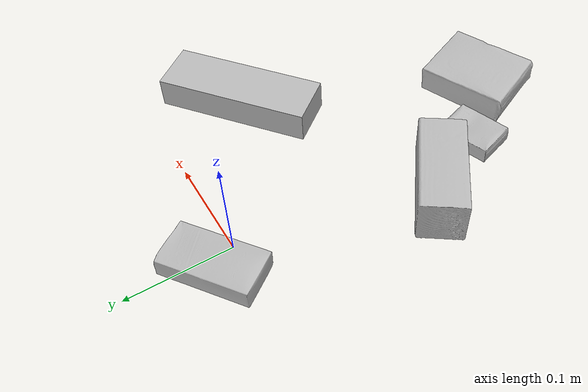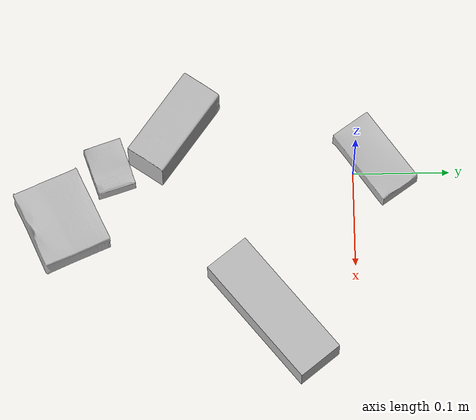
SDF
<sdf version="1.4">
  <world name="default">
    <light name="light1" type="point">
      <pose>0 0 1 0 0 0</pose>
      <diffuse>3 3 3 1</diffuse>
      <specular>3 3 3 1</specular>
    </light>
    <light name="light2" type="point">
      <pose>0 0.5 2 0 0 0</pose>
      <diffuse>1 1 1 1</diffuse>
      <specular>1 1 1 1</specular>
    </light>
    <light name="light3" type="point">
      <pose>0 0.5 2 0 0 0</pose>
      <diffuse>3 3 3 1</diffuse>
      <specular>3 3 3 1</specular>
    </light>
    <scene>
      <ambient>0.7 0.7 0.7</ambient>
    </scene>
    <model name="box1">
      <link name="link_box1">
        <collision name="default">
          <geometry>
            <mesh>
              <uri>model://sugar_box/collision_meshes/collision.obj</uri>
              <scale>0.5 0.5 0.5</scale>
            </mesh>
          </geometry>
          <surface>
            <friction>
              <ode>
                <mu>0.5</mu>
                <mu2>0.5</mu2>
              </ode>
            </friction>
          <contact>
        <ode>
            <max_vel>0</max_vel>
            <min_depth>0.0001</min_depth>
            <kp>1e8</kp>
        </ode>
    </contact></surface>
        </collision>
        <visual name="default">
          <geometry>
            <mesh>
              <uri>model://sugar_box/visual_meshes/visual.dae</uri>
              <scale>0.5 0.5 0.5</scale>
            </mesh>
          </geometry>
        </visual>
        <inertial>
          <mass>0.05016465485095978</mass>
          <pose>0.0005171863595023751 1.924554817378521e-05 -0.0001818240125430748 -0.00040462615463102695 0.0010506635220671036 0.0026153792546614123</pose>
          <inertia>
            <ixx>1.0449262e-05</ixx>
            <iyy>3.3774166e-05</iyy>
            <izz>4.0431696e-05</izz>
            <ixy>0</ixy>
            <ixz>0</ixz>
            <iyz>0</iyz>
          </inertia>
        </inertial>
      </link>
      <pose>-0.012782623060047626 0.022746462374925613 0.011399303562939167 0.0007756291864276162 -0.023432756793228645 -2.529188489731185</pose>
    </model>
    <model name="box2">
      <link name="link_box2">
        <collision name="default">
          <geometry>
            <mesh>
              <uri>model://cracker_box/collision_meshes/collision.obj</uri>
              <scale>0.25 0.25 0.25</scale>
            </mesh>
          </geometry>
          <surface>
            <friction>
              <ode>
                <mu>0.5</mu>
                <mu2>0.5</mu2>
              </ode>
            </friction>
          <contact>
        <ode>
            <max_vel>0</max_vel>
            <min_depth>0.0001</min_depth>
            <kp>1e8</kp>
        </ode>
    </contact></surface>
        </collision>
        <visual name="default">
          <geometry>
            <mesh>
              <uri>model://cracker_box/visual_meshes/visual.dae</uri>
              <scale>0.25 0.25 0.25</scale>
            </mesh>
          </geometry>
        </visual>
        <inertial>
          <mass>0.05325852707028389</mass>
          <pose>0.0002366033149883151 6.358561950037256e-05 -0.0004257383698131889 -0.000316207624135088 -0.011106486806293444 0.0025467950014945295</pose>
          <inertia>
            <ixx>8.46662e-06</ixx>
            <iyy>1.3980052e-05</iyy>
            <izz>1.995082e-05</izz>
            <ixy>0</ixy>
            <ixz>0</ixz>
            <iyz>0</iyz>
          </inertia>
        </inertial>
      </link>
      <pose>-0.007940459065139294 -0.25237035751342773 0.009120450355112553 -0.011788092912332758 -0.007367170224371998 -2.830575434227153</pose>
    </model>
    <model name="box3">
      <link name="link_box3">
        <collision name="default">
          <geometry>
            <mesh>
              <uri>model://wood_block/collision_meshes/collision.obj</uri>
              <scale>0.5 0.5 0.5</scale>
            </mesh>
          </geometry>
          <surface>
            <friction>
              <ode>
                <mu>0.5</mu>
                <mu2>0.5</mu2>
              </ode>
            </friction>
          <contact>
        <ode>
            <max_vel>0</max_vel>
            <min_depth>0.0001</min_depth>
            <kp>1e8</kp>
        </ode>
    </contact></surface>
        </collision>
        <visual name="default">
          <geometry>
            <mesh>
              <uri>model://wood_block/visual_meshes/visual.dae</uri>
              <scale>0.5 0.5 0.5</scale>
            </mesh>
          </geometry>
        </visual>
        <inertial>
          <mass>0.24977724254131317</mass>
          <pose>-2.9066577553749084e-06 -0.00028540476341731846 0.00013204291462898254 -0.05220975529066727 -0.005192695547513155 -0.006861377927637377</pose>
          <inertia>
            <ixx>8.355995e-05</ixx>
            <iyy>0.00026396586</iyy>
            <izz>0.00026297852</izz>
            <ixy>0</ixy>
            <ixz>0</ixz>
            <iyz>0</iyz>
          </inertia>
        </inertial>
      </link>
      <pose>-0.04549065977334976 -0.18508638441562653 0.022629262879490852 -0.005208351786781976 0.005718788055695637 2.5204722316848183</pose>
    </model>
    <model name="box4">
      <link name="link_box4">
        <collision name="default">
          <geometry>
            <mesh>
              <uri>model://gelatin_box/collision_meshes/collision.obj</uri>
              <scale>1.0 1.0 1.0</scale>
            </mesh>
          </geometry>
          <surface>
            <friction>
              <ode>
                <mu>0.5</mu>
                <mu2>0.5</mu2>
              </ode>
            </friction>
          <contact>
        <ode>
            <max_vel>0</max_vel>
            <min_depth>0.0001</min_depth>
            <kp>1e8</kp>
        </ode>
    </contact></surface>
        </collision>
        <visual name="default">
          <geometry>
            <mesh>
              <uri>model://gelatin_box/visual_meshes/visual.dae</uri>
              <scale>1.0 1.0 1.0</scale>
            </mesh>
          </geometry>
        </visual>
        <inertial>
          <mass>0.142814502120018</mass>
          <pose>0.0004319618456065655 0.00011156871187267825 -0.0003640321083366871 -0.0010503719804291966 -0.004755819155973465 0.01644055947187314</pose>
          <inertia>
            <ixx>0.000100815385</ixx>
            <iyy>7.20119e-05</iyy>
            <izz>0.00015346348</izz>
            <ixy>0</ixy>
            <ixz>0</ixz>
            <iyz>0</iyz>
          </inertia>
        </inertial>
      </link>
      <pose>0.05043371766805649 -0.30162912607192993 0.015168310143053532 0.005596678443681661 -0.007303681571266601 -1.1675244134569165</pose>
    </model>
    <model name="box5">
      <link name="link_box5">
        <collision name="default">
          <geometry>
            <mesh>
              <uri>model://jenga/collision_meshes/collision.obj</uri>
              <scale>1.0 1.0 1.0</scale>
            </mesh>
          </geometry>
          <surface>
            <friction>
              <ode>
                <mu>0.5</mu>
                <mu2>0.5</mu2>
              </ode>
            </friction>
          <contact>
        <ode>
            <max_vel>0</max_vel>
            <min_depth>0.0001</min_depth>
            <kp>1e8</kp>
        </ode>
    </contact></surface>
        </collision>
        <visual name="default">
          <geometry>
            <mesh>
              <uri>model://jenga/visual_meshes/visual.dae</uri>
              <scale>1.0 1.0 1.0</scale>
            </mesh>
          </geometry>
        </visual>
        <inertial>
          <mass>0.11303283274173737</mass>
          <pose>-2.502855807051674e-07 -0.00010250010382151231 -4.0923401684267446e-05 0.0 -7.342155186052628e-07 0.0</pose>
          <inertia>
            <ixx>3.127893e-05</ixx>
            <iyy>0.00021194515</iyy>
            <izz>0.00022626946</izz>
            <ixy>0</ixy>
            <ixz>0</ixz>
            <iyz>0</iyz>
          </inertia>
        </inertial>
      </link>
      <pose>0.15227772295475006 -0.08641367405653 0.014999994076788425 1.3998807956691775e-08 -3.781591977246655e-09 0.6731003660018394</pose>
    </model>
  <physics type="ode">
      <max_contacts>50</max_contacts>
      <ode>
        <solver>
          <type>quick</type>
          <iters>75</iters>
        </solver>
        <constraints>
          <contact_max_correcting_vel>0</contact_max_correcting_vel>
          <contact_surface_layer>0</contact_surface_layer>
        </constraints>
      </ode>
    </physics></world>
</sdf>
